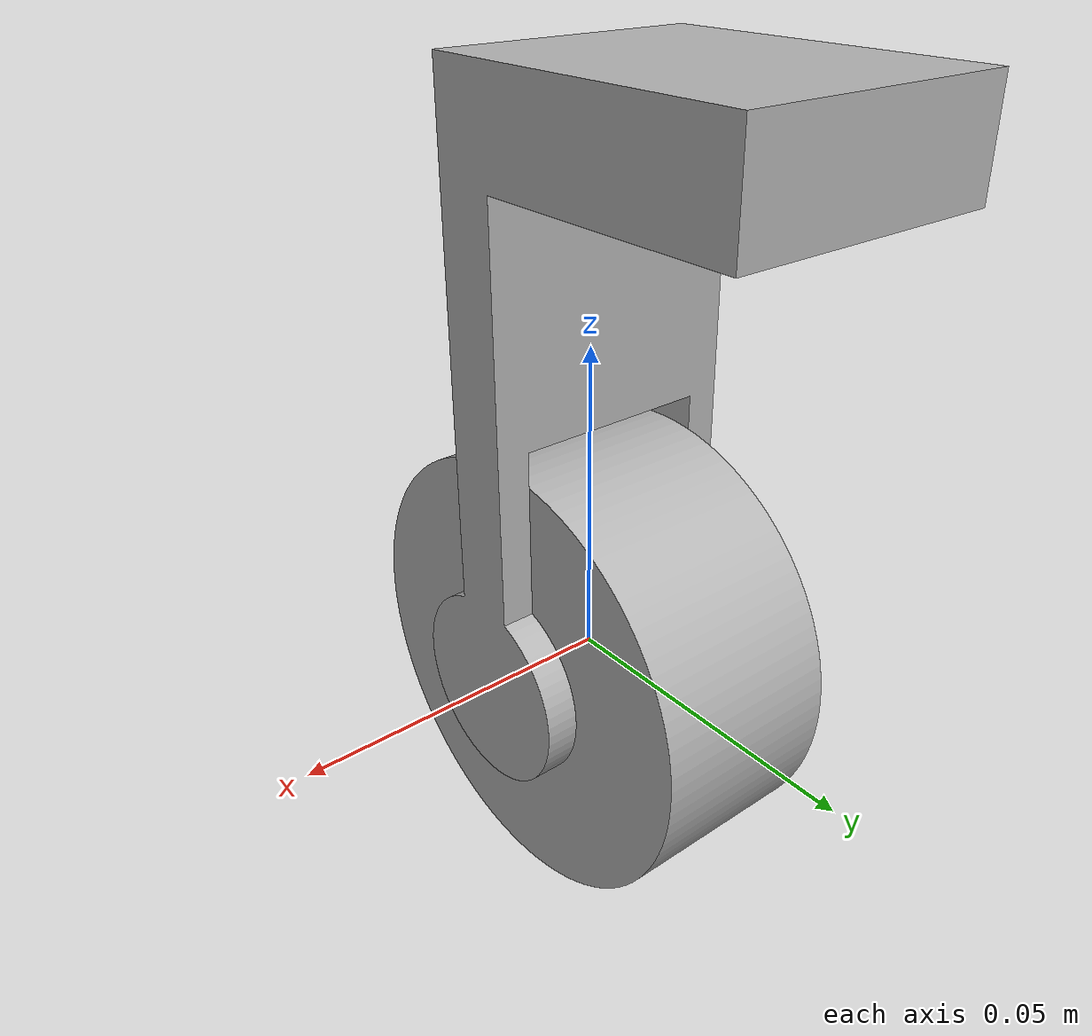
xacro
<?xml version="1.0" ?>
<robot name="Balancing" xmlns:xacro="http://www.ros.org/wiki/xacro">

<xacro:include filename="$(find Balancing_description)/urdf/materials.xacro" />
<xacro:include filename="$(find Balancing_description)/urdf/Balancing.trans" />
<xacro:include filename="$(find Balancing_description)/urdf/Balancing.gazebo" />
<link name="base_link">
  <inertial>
    <origin xyz="2.6514350005061423e-18 0.01119468907525927 0.06248813249095532" rpy="0 0 0"/>
    <mass value="0.4207352225984817"/>
    <inertia ixx="0.000453" iyy="0.000427" izz="0.000164" ixy="-0.0" iyz="-9.4e-05" ixz="0.0"/>
  </inertial>
  <visual>
    <origin xyz="0 0 0" rpy="0 0 0"/>
    <geometry>
      <mesh filename="file://$(find Balancing_description)/meshes/base_link.stl" scale="0.001 0.001 0.001"/>
    </geometry>
    <material name="silver"/>
  </visual>
  <collision>
    <origin xyz="0 0 0" rpy="0 0 0"/>
    <geometry>
      <mesh filename="file://$(find Balancing_description)/meshes/base_link.stl" scale="0.001 0.001 0.001"/>
    </geometry>
  </collision>
</link>

<link name="link1_1">
  <inertial>
    <origin xyz="4.92348903071601e-18 4.92348903071601e-18 -4.92348903071601e-18" rpy="0 0 0"/>
    <mass value="0.9063102106524854"/>
    <inertia ixx="0.000555" iyy="0.000346" izz="0.000346" ixy="-0.0" iyz="0.0" ixz="0.0"/>
  </inertial>
  <visual>
    <origin xyz="-0.0 -0.0 -0.0" rpy="0 0 0"/>
    <geometry>
      <mesh filename="file://$(find Balancing_description)/meshes/link1_1.stl" scale="0.001 0.001 0.001"/>
    </geometry>
    <material name="silver"/>
  </visual>
  <collision>
    <origin xyz="-0.0 -0.0 -0.0" rpy="0 0 0"/>
    <geometry>
      <mesh filename="file://$(find Balancing_description)/meshes/link1_1.stl" scale="0.001 0.001 0.001"/>
    </geometry>
  </collision>
</link>

<joint name="rev1" type="continuous">
  <origin xyz="0.0 0.0 0.0" rpy="0 0 0"/>
  <parent link="base_link"/>
  <child link="link1_1"/>
  <axis xyz="1.0 0.0 0.0"/>
</joint>

</robot>

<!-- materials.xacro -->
<robot name="Balancing" xmlns:xacro="http://www.ros.org/wiki/xacro" >

<material name="silver">
  <color rgba="0.700 0.700 0.700 1.000"/>
</material>

</robot>

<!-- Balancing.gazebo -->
<robot name="Balancing" xmlns:xacro="http://www.ros.org/wiki/xacro" >

<xacro:property name="body_color" value="Gazebo/Silver" />

<gazebo>
  <plugin name="control" filename="libgazebo_ros_control.so"/>
</gazebo>
<gazebo reference="base_link">
  <material>${body_color}</material>
  <mu1>0.2</mu1>
  <mu2>0.2</mu2>
  <self_collide>true</self_collide>
  <gravity>true</gravity>
</gazebo>

<gazebo reference="link1_1">
  <material>${body_color}</material>
  <mu1>0.2</mu1>
  <mu2>0.2</mu2>
  <self_collide>true</self_collide>
</gazebo>

</robot>
